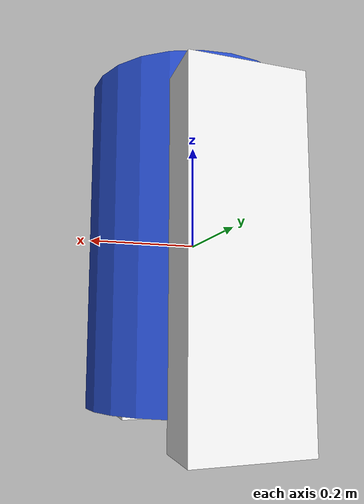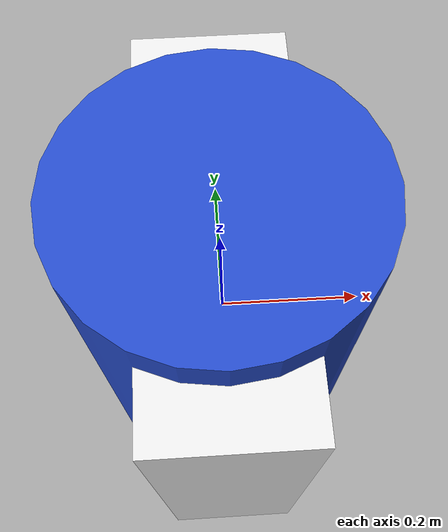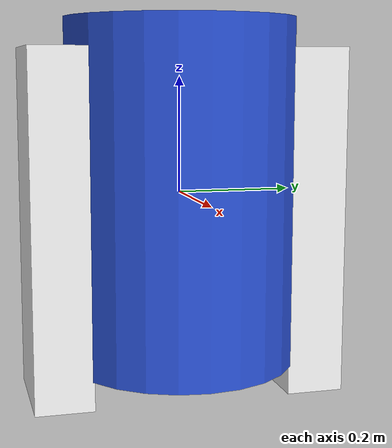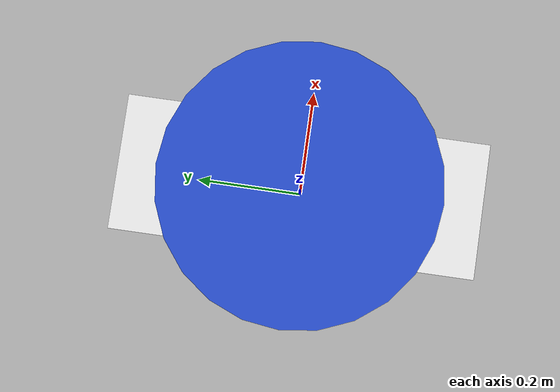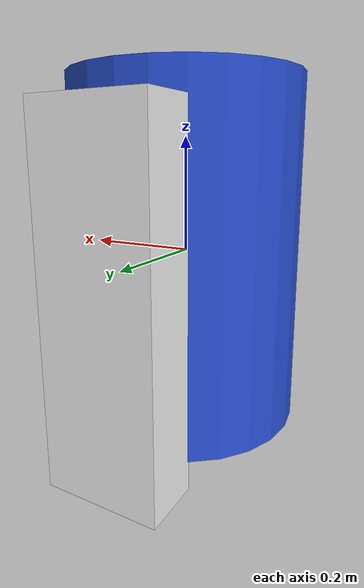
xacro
<?xml version="1.0"?>
<robot name="firefighter" xmlns:xacro="http://www.ros.org/wiki/xacro">

    <!-- TODO: part of test_robot.urdf -->

    <xacro:property name="pi" value="3.1415926" />
    <xacro:property name="width" value="0.2" />
    <xacro:property name="body_length" value="0.6" />
    <xacro:property name="leg_length" value="0.6" />

    <xacro:macro name="default_inertial" params="mass">
        <inertial>
            <mass value="${mass}" />
            <inertia ixx="1.0" ixy="0.0" ixz="0.0"
                     iyy="1.0" iyz="0.0"
                     izz="1.0" />
        </inertial>
    </xacro:macro>

    <link name="base_link">
        <visual>
            <geometry>
                <cylinder radius="${width}" length="${body_length}"/>
            </geometry>
            <material name="blue"/>
        </visual>
        <collision>
            <geometry>
                <cylinder radius="${width}" length="${body_length}"/>
            </geometry>
        </collision>
        <xacro:default_inertial mass="10"/>
    </link>

<!--  Use a name prefix to get two similarly named objects.  -->
<!--  Use math to calculate joint origins.  -->
<!--  Using a reflect parameter, and setting it to 1 or -1.  -->
    <xacro:macro name="leg" params="prefix reflect">
        <link name="${prefix}_leg">
            <visual>
                <geometry>
                    <box size="${leg_length} 0.1 0.2"/>
                </geometry>
                <origin xyz="0 0 -${leg_length/2}" rpy="0 ${pi/2} 0"/>
                <material name="white"/>
            </visual>
            <collision>
                <geometry>
                    <box size="${leg_length} 0.1 0.2"/>
                </geometry>
                <origin xyz="0 0 -${leg_length/2}" rpy="0 ${pi/2} 0"/>
            </collision>
            <xacro:default_inertial mass="10"/>
        </link>

        <joint name="base_to_${prefix}_leg" type="fixed">
            <parent link="base_link"/>
            <child link="${prefix}_leg"/>
            <origin xyz="0 ${reflect*(width+.02)} 0.25" />
        </joint>
        <!-- A bunch of stuff cut -->
    </xacro:macro>
    <xacro:leg prefix="right" reflect="1" />
    <xacro:leg prefix="left" reflect="-1" />

</robot>
